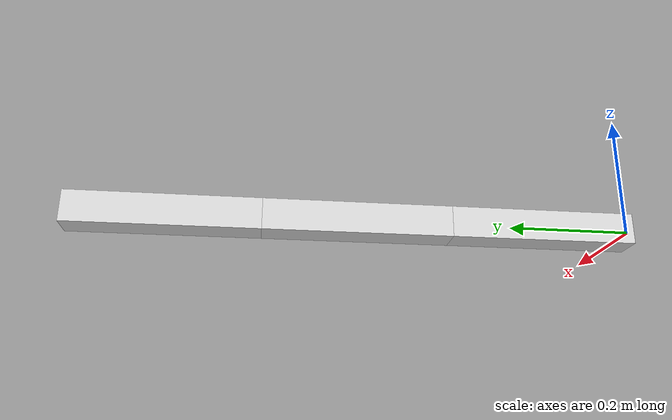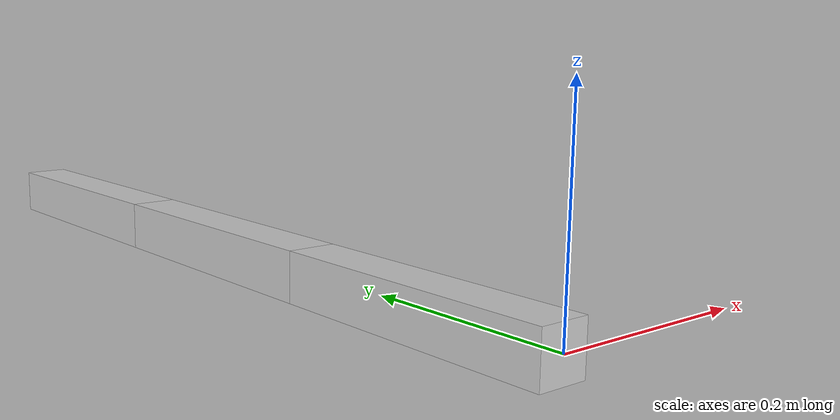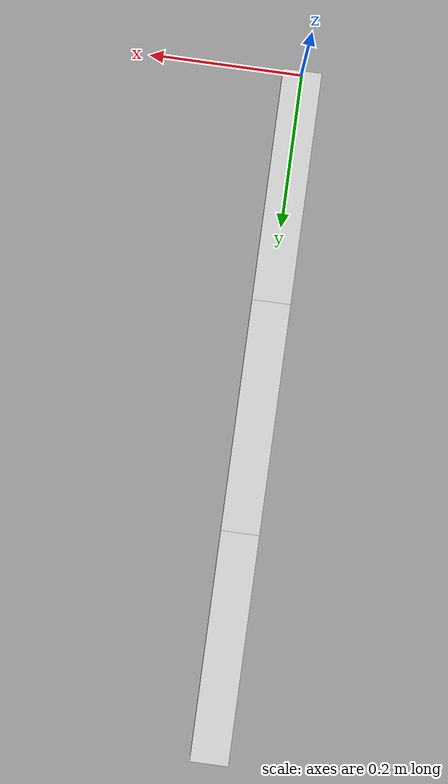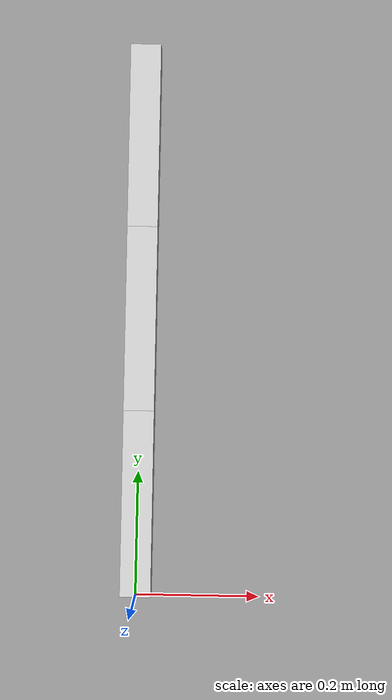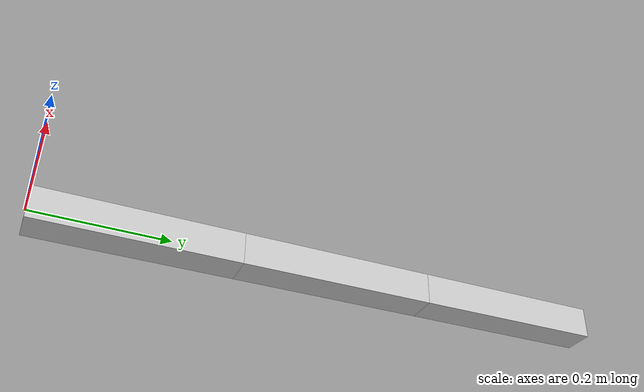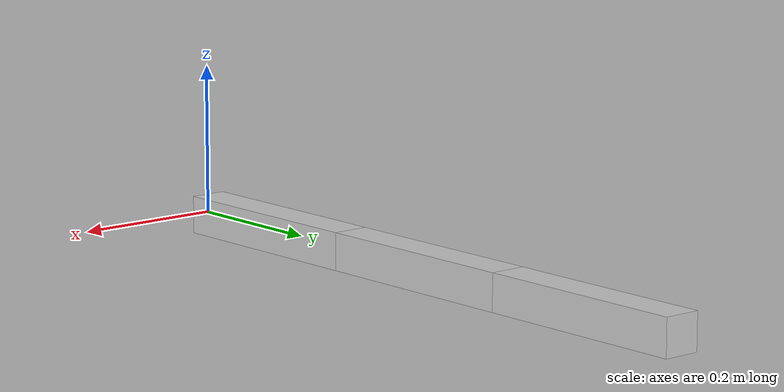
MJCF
<mujoco>
  <option gravity="0 -9.81 0" />
  <asset>
    <texture type="skybox" builtin="gradient" rgb1="0.3 0.5 0.7" rgb2="0 0 0" width="512" height="512" />
    <texture name="plane" type="2d" builtin="checker" rgb1=".2 .3 .4" rgb2=".1 0.15 0.2" width="512" height="512" mark="cross" markrgb=".8 .8 .8" />
    <material name="plane" reflectance="0.3" texture="plane" texrepeat="1 1" texuniform="true" />
  </asset>

  <worldbody>
    <light directional="true" diffuse=".2 .2 .2" specular="0 0 0" pos="0 1 5" dir="0 -1 -1" castshadow="false"/>
    <light directional="false" diffuse=".8 .8 .8" specular="0.3 0.3 0.3" pos="0 -1 4" dir="0 0 -1" />
    <light directional="true" diffuse="0 0 0" specular=".7 .7 .7" pos="0 3 3" dir="0 -3 -3" />

    <body name="link_0" pos="0 0.15 0" euler="0 0 0">
        <joint name="joint_0" type="hinge" axis="0 0 1" pos="0 -0.15 0" damping="0.4"/>
        <geom name="box_link_0" type="box" size=".025 .15 .025" rgba="0.8 0.8 0.8 1" density="2700"/>

        <body name="link_1" pos="0 0.3 0">
              <joint name="joint_1" type="hinge" axis="0 0 1" pos="0 -0.15 0" damping="0.4"/>
              <geom name="box_link_1" type="box" size=".025 .15 .025" rgba="0.8 0.8 0.8 1" density="2700"/>

              <body name="link_2" pos="0 0.3 0">
                <joint name="joint_2" type="hinge" axis="0 0 1" pos="0 -0.15 0" damping="0.4"/>
                <geom name="box_link_2" type="box" size=".025 .15 .025" rgba="0.8 0.8 0.8 1" density="2700"/>
              </body>
        </body>
    </body>
  </worldbody>
  <actuator>
    <motor joint="joint_0" gear="1"/>
    <motor joint="joint_1" gear="1"/>
    <motor joint="joint_2" gear="1"/>
  </actuator>
</mujoco>
